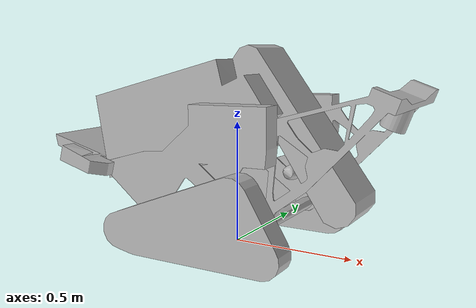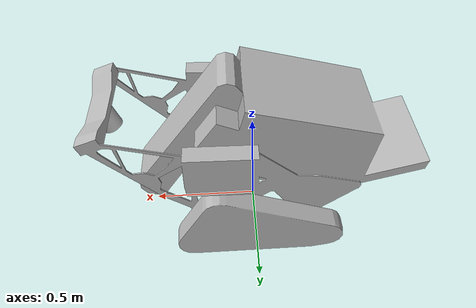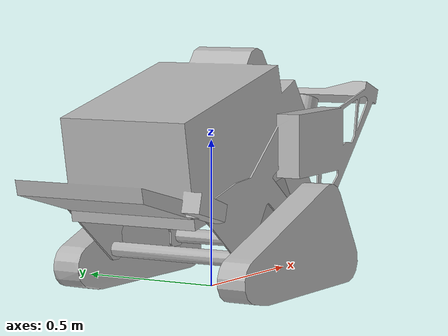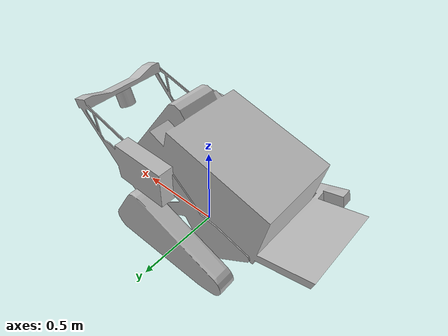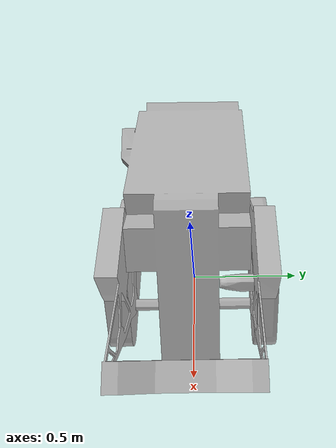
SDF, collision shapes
<?xml version="1.0" ?>
<sdf version="1.8">

	<model name='lance'>

		<link name = 'base_link'></link>

	<!-- FRAME -->
		<link name = 'frame_link'>
			<pose relative_to = 'base_link'>0 0 0.13103567 0 0 0</pose>

			<inertial>
				<mass>9.773</mass>
				<pose>0.101 0.001 0.214 0 0 0</pose>
				<inertia>
					<ixx> 0.909 </ixx>
					<ixy> -0.0001142 </ixy>
					<ixz> -0.2698 </ixz>
					<iyy> 1.129 </iyy>
					<iyz> 0.002 </iyz>
					<izz> 1.479 </izz>
				</inertia>
			</inertial>

			<visual name = 'core_visual'>
				<geometry>
					<mesh>
						<uri>file://$(find ros_gz_example_description)/models/lance/meshes/lance-2024-frame.dae</uri>
						<scale>1 1 1</scale>
					</mesh>
				</geometry>
			</visual>

			<collision name = 'core_collision'>
				<geometry>
					<mesh>
						<uri>file://$(find ros_gz_example_description)/models/lance/meshes/lance-2024-frame-collision.stl</uri>
						<scale>1 1 1</scale>
					</mesh>
				</geometry>
			</collision>
		</link>

	<!-- LEFT TRACK -->
		<link name = 'left_track_link'>
			<pose relative_to = 'frame_link'>0.20318559 0.28988800 0.00242022 0 0 0</pose>

			<inertial>
				<mass>6.925</mass>
				<pose>-0.162 0.015 0.021 0 0 0</pose>
				<inertia>
					<ixx> 0.073 </ixx>
					<ixy> 0.0008 </ixy>
					<ixz> -0.032 </ixz>
					<iyy> 0.366 </iyy>
					<iyz> 0.0006 </iyz>
					<izz> 0.3 </izz>
				</inertia>
			</inertial>

			<visual name = 'left_track_visual'>
				<geometry>
					<mesh>
						<uri>file://$(find ros_gz_example_description)/models/lance/meshes/lance-2024-left-track.dae</uri>
						<scale>1 1 1</scale>
					</mesh>
				</geometry>
			</visual>

			<collision name = 'left_track_collision'>
				<geometry>
					<mesh>
						<uri>file://$(find ros_gz_example_description)/models/lance/meshes/lance-2024-left-track-collision.stl</uri>
						<scale>1 1 1</scale>
					</mesh>
				</geometry>
			</collision>
		</link>

		<joint name = 'left_track_joint' type = 'fixed'>
			<parent>frame_link</parent>
			<child>left_track_link</child>
		</joint>

	<!-- RIGHT TRACK -->
		<link name = 'right_track_link'>
			<pose relative_to = 'frame_link'>0.20318559 -0.28988800 0.00242022 0 0 0</pose>

			<inertial>
				<mass>6.925</mass>
				<pose>-0.162 -0.015 0.021 0 0 0</pose>
				<inertia>
					<ixx> 0.073 </ixx>
					<ixy> -0.0006 </ixy>
					<ixz> -0.032 </ixz>
					<iyy> 0.366 </iyy>
					<iyz> -0.0005 </iyz>
					<izz> 0.3 </izz>
				</inertia>
			</inertial>

			<visual name = 'right_track_visual'>
				<geometry>
					<mesh>
						<uri>file://$(find ros_gz_example_description)/models/lance/meshes/lance-2024-right-track.dae</uri>
						<scale>1 1 1</scale>
					</mesh>
				</geometry>
			</visual>

			<collision name = 'right_track_collision'>
				<geometry>
					<mesh>
						<uri>file://$(find ros_gz_example_description)/models/lance/meshes/lance-2024-right-track-collision.stl</uri>
						<scale>1 1 1</scale>
					</mesh>
				</geometry>
			</collision>
		</link>

		<joint name = 'right_track_joint' type = 'fixed'>
			<parent>frame_link</parent>
			<child>right_track_link</child>
		</joint>

	<!-- Excavation and Dump Unit -->
		<link name = 'collection_link'>
			<pose relative_to = 'frame_link'>-0.45721441 0 0.18580822 0 -0.2617994 0</pose>

			<inertial>
				<mass>20.352</mass>
				<pose>0.417 -0.02 0.038 0 0 0</pose>
				<inertia>
					<ixx> 1 </ixx>
					<ixy> -0.122 </ixy>
					<ixz> 0.281 </ixz>
					<iyy> 2.457 </iyy>
					<iyz> 0.027 </iyz>
					<izz> 2.431 </izz>
				</inertia>
			</inertial>

			<visual name = 'hopper_visual'>
				<geometry>
					<mesh>
						<uri>file://$(find ros_gz_example_description)/models/lance/meshes/lance-2024-hopper.dae</uri>
						<scale>1 1 1</scale>
					</mesh>
				</geometry>
			</visual>
			<visual name = 'collection_visual'>
				<geometry>
					<mesh>
						<uri>file://$(find ros_gz_example_description)/models/lance/meshes/lance-2024-collection.dae</uri>
						<scale>1 1 1</scale>
					</mesh>
				</geometry>
			</visual>

			<collision name = 'collection_collision'>
				<geometry>
					<mesh>
						<uri>file://$(find ros_gz_example_description)/models/lance/meshes/lance-2024-upper-collision.stl</uri>
						<scale>1 1 1</scale>
					</mesh>
				</geometry>
			</collision>
		</link>

		<joint name = 'dump_joint' type = 'revolute'>
			<parent>frame_link</parent>
			<child>collection_link</child>
			<axis>
				<xyz>0 1 0</xyz>
				<limit>
					<upper>0.2617994</upper>
					<lower>-0.2617994</lower>
				</limit>
			</axis>
		</joint>

	<!-- LIDAR -->
		<link name = 'lidar_link'>
			<pose relative_to = 'frame_link'>0.64957717 0 0.42478867 3.1415926 0.3490659 0</pose>

			<inertial>
				<mass>0.7</mass>
				<pose>1.97e-5 -0.001 -0.009 0 0 0</pose>
				<inertia>
					<ixx> 0.001 </ixx>
					<ixy> 2e-8 </ixy>
					<ixz> 4e-7 </ixz>
					<iyy> 0.001 </iyy>
					<iyz> -3e-5 </iyz>
					<izz> 0.001 </izz>
				</inertia>
			</inertial>

			<visual name = 'lidar_visual'>
				<geometry>
					<mesh>
						<uri>file://$(find ros_gz_example_description)/models/lance/meshes/lance-2024-multiscan.dae</uri>
						<scale>1 1 1</scale>
					</mesh>
				</geometry>
			</visual>

			<collision name = 'lidar_collision'>
				<pose relative_to = 'lidar_link'>0 0 -0.006 0 0 0</pose>
				<geometry>
					<cylinder>
						<radius>0.048</radius>
						<length>0.098</length>
					</cylinder>
				</geometry>
			</collision>

		</link>

		<joint name = 'lidar_joint' type = 'fixed'>
			<parent>frame_link</parent>
			<child>lidar_link</child>
		</joint>

	</model>
</sdf>
